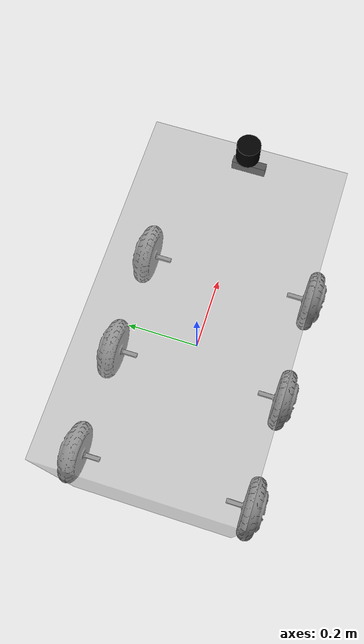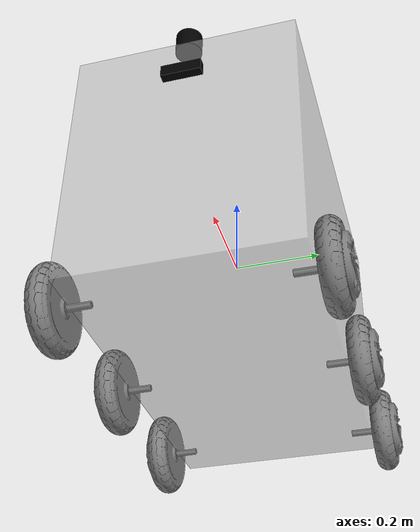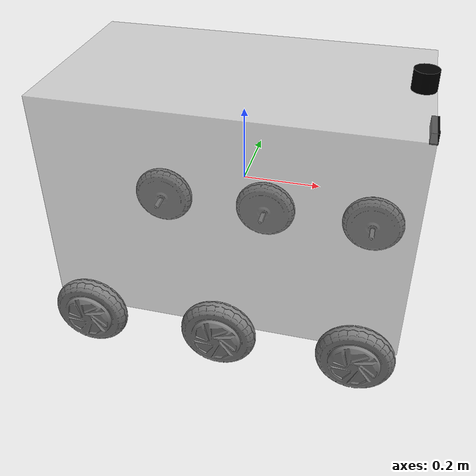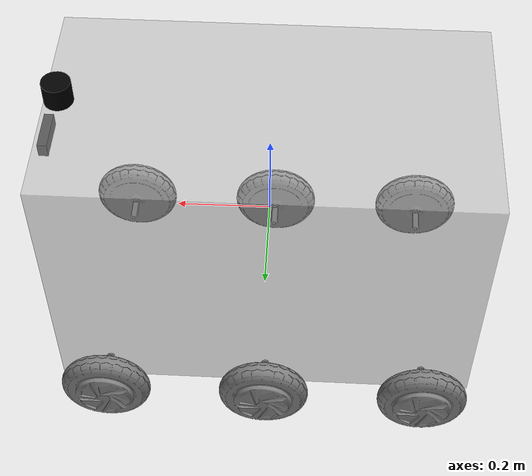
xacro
<?xml version="1.0"?>
<robot name="delivery_robot" xmlns:xacro="http://ros.org/wiki/xacro">

  <!-- Właściwości -->
  <xacro:property name="body_length" value="0.9"/>
  <xacro:property name="body_width" value="0.5"/>
  <xacro:property name="body_height" value="0.6"/>
  <xacro:property name="wheel_radius" value="0.1016"/>
  <xacro:property name="wheel_width" value="0.05"/>
  <xacro:property name="wheel_gap" value="0.35"/>
  <xacro:property name="wheel_y_offset" value="${0.5 * body_width + 0.009}"/>
  <xacro:property name="wheel_mass" value="3.0"/>
  <xacro:property name="pkg_path" value="$(find boxygo)"/>

  <!-- Materiały -->
  <material name="black"><color rgba="0 0 0 1"/></material>
  <material name="white"><color rgba="0.7 0.7 0.7 0.5"/></material>
  <material name="grey"><color rgba="0.5 0.5 0.5 1"/></material>

  <!-- Korpus -->
  <link name="base_link">
    <visual>
      <geometry>
        <box size="${body_length} ${body_width} ${body_height}"/>
      </geometry>
      <material name="white"/>
    </visual>
    <collision>
      <geometry>
        <box size="${body_length} ${body_width} ${body_height}"/>
      </geometry>
    </collision>
    <inertial>
      <mass value="20"/>
      <inertia ixx="1" ixy="0" ixz="0" iyy="1" iyz="0" izz="1"/>
    </inertial>
  </link>

    <!-- Kamera -->
  <link name="depth_camera_link">
    <visual>
      <geometry>
        <box size="0.02 0.09 0.03"/>
      </geometry>
      <material name="black"/>
    </visual>
    <collision>
      <geometry>
        <box size="0.02 0.09 0.03"/>
      </geometry>
    </collision>
    <inertial>
      <mass value="0.1"/>
      <inertia ixx="0.0001" ixy="0.0" ixz="0.0" iyy="0.0001" iyz="0.0" izz="0.0001"/>
    </inertial>
  </link>

  <joint name="depth_camera_joint" type="fixed">
    <parent link="base_link"/>
    <child link="depth_camera_link"/>
    <origin xyz="${body_length/2 + 0.01} 0 ${body_height/2 - 0.1}" rpy="0 0 0"/>
  </joint>

  <joint name="depth_camera_optical_joint" type="fixed">
    <parent link="depth_camera_link"/>
    <child link="depth_camera_link_optical"/>
    <origin xyz="0 0 0" rpy="-1.5708 0 -1.5708"/> <!-- -pi/2 in radians -->
  </joint>

  <link name="depth_camera_link_optical"/>

  <gazebo reference="depth_camera_link">
    <sensor name="depth_camera" type="depth">
      <pose>0 0 0 0 0 0</pose>
      <visualize>true</visualize>
      <update_rate>30.0</update_rate>
      <camera>
        <horizontal_fov>1.39626</horizontal_fov>
        <image>
          <width>640</width>
          <height>480</height>
          <format>B8G8R8</format>
        </image>
        <clip>
          <near>0.1</near>
          <far>10.0</far>
        </clip>
      </camera>
      <plugin name="depth_camera_controller" filename="libgazebo_ros_camera.so">
        <camera_name>depth_camera</camera_name>
        <frame_name>depth_camera_link_optical</frame_name>
        <min_depth>0.1</min_depth>
        <max_depth>100.0</max_depth>
      </plugin>
    </sensor>
  </gazebo>

    <!-- Lidar 2D -->
  <link name="lidar_link">
    <visual>
      <geometry>
        <cylinder length="0.05" radius="0.03"/>
      </geometry>
      <material name="black"/>
    </visual>
    <collision>
      <geometry>
        <cylinder length="0.05" radius="0.03"/>
      </geometry>
    </collision>
    <inertial>
      <mass value="0.2"/>
      <inertia ixx="0.0001" ixy="0" ixz="0" iyy="0.0001" iyz="0" izz="0.0001"/>
    </inertial>
  </link>

  <joint name="lidar_joint" type="fixed">
    <parent link="base_link"/>
    <child link="lidar_link"/>
    <origin xyz="${body_length/2 - 0.03} 0 ${body_height/2 + 0.025}" rpy="0 0 0"/>
  </joint>

  <gazebo reference="lidar_link">
    <sensor name="lidar_sensor" type="ray">
      <always_on>true</always_on>
      <update_rate>20.0</update_rate>
      <visualize>true</visualize>
      <ray>
        <scan>
          <horizontal>
            <samples>720</samples>
            <resolution>1</resolution>
            <min_angle>-1.5708</min_angle>
            <max_angle>1.5708</max_angle>
          </horizontal>
        </scan>
        <range>
          <min>0.1</min>
          <max>12.0</max>
          <resolution>0.01</resolution>
        </range>
        <noise>
          <type>gaussian</type>
          <mean>0.0</mean>
          <stddev>0.01</stddev>
        </noise>
      </ray>
      <plugin name="gazebo_ros_laser" filename="libgazebo_ros_ray_sensor.so">
        <topicName>scan</topicName>
        <frameName>lidar_link</frameName>
      </plugin>
    </sensor>
  </gazebo>

  <!-- Makro koła -->
  <xacro:macro name="wheel" params="side wheel_side_sign joint_sign index x_offset">
    <xacro:property name="ixx" value="${(1.0/12.0) * wheel_mass * (3 * wheel_radius**2 + wheel_width**2)}"/>
    <xacro:property name="izz" value="${0.5 * wheel_mass * wheel_radius**2}"/>
    <link name="${side}_wheel_${index}">
      <inertial>
        <mass value="${wheel_mass}"/>
        <inertia ixx="${ixx}" iyy="${ixx}" izz="${izz}" ixy="0.0" ixz="0.0" iyz="0.0"/>
      </inertial>
      <visual>
        <geometry>
          <mesh filename="${pkg_path}/meshes/hoverboard_wheel_v2.stl" scale="0.001 0.001 0.001"/>
        </geometry>
        <origin xyz="0 0 0" rpy="0 0 ${wheel_side_sign * 3.141592}"/>
        <material name="grey"/>
      </visual>
      <collision>
        <geometry>
          <mesh filename="${pkg_path}/meshes/hoverboard_wheel_v2.stl" scale="0.001 0.001 0.001"/>
        </geometry>
        <origin xyz="0 0 0" rpy="0 0 ${wheel_side_sign * 3.141592}"/>
      </collision>
    </link>
    <gazebo reference="${side}_wheel_${index}">
      <mu1>1.0</mu1>
      <mu2>1.0</mu2>
      <kp>100000.0</kp>
      <kd>10.0</kd>
      <minDepth>0.001</minDepth>
      <maxVel>0.01</maxVel>
    </gazebo>
    <joint name="${side}_wheel_${index}_joint" type="continuous">
      <parent link="base_link"/>
      <child link="${side}_wheel_${index}"/>
      <origin xyz="${x_offset} ${joint_sign * wheel_y_offset} ${-0.5 * body_height}" rpy="0 0 0"/>
      <axis xyz="0 1 0"/>
      <limit effort="10.0" velocity="10.0"/>
      <dynamics damping="0.1" friction="0.1"/>
    </joint>
    <transmission name="${side}_wheel_${index}_trans">
    <type>transmission_interface/SimpleTransmission</type>
    <joint name="${side}_wheel_${index}_joint">
      <hardwareInterface>hardware_interface/VelocityJointInterface</hardwareInterface>
    </joint>
    <actuator name="${side}_wheel_${index}_motor">
      <hardwareInterface>hardware_interface/VelocityJointInterface</hardwareInterface>
      <mechanicalReduction>1</mechanicalReduction>
    </actuator>
  </transmission>
  </xacro:macro>

  <!-- Koła lewe -->
  <xacro:wheel side="left" wheel_side_sign="1" joint_sign="1" index="1" x_offset="${-wheel_gap}"/>
  <xacro:wheel side="left" wheel_side_sign="1" joint_sign="1" index="2" x_offset="0"/>
  <xacro:wheel side="left" wheel_side_sign="1" joint_sign="1" index="3" x_offset="${wheel_gap}"/>
  <!-- Koła prawe -->
  <xacro:wheel side="right" wheel_side_sign="0" joint_sign="-1" index="1" x_offset="${-wheel_gap}"/>
  <xacro:wheel side="right" wheel_side_sign="0" joint_sign="-1" index="2" x_offset="0"/>
  <xacro:wheel side="right" wheel_side_sign="0" joint_sign="-1" index="3" x_offset="${wheel_gap}"/>

  <!-- Gazebo - kolor -->
  <gazebo reference="base_link">
    <material>Gazebo/White</material>
  </gazebo>
  <gazebo reference="left_wheel_1">
    <material>Gazebo/Grey</material>
  </gazebo>
  <gazebo reference="left_wheel_2">
    <material>Gazebo/Grey</material>
  </gazebo>
  <gazebo reference="left_wheel_3">
    <material>Gazebo/Grey</material>
  </gazebo>
  <gazebo reference="right_wheel_1">
    <material>Gazebo/Grey</material>
  </gazebo>
  <gazebo reference="right_wheel_2">
    <material>Gazebo/Grey</material>
  </gazebo>
  <gazebo reference="right_wheel_3">
    <material>Gazebo/Grey</material>
  </gazebo>
  <gazebo reference="lidar_link">
    <material>Gazebo/Black</material>
  </gazebo>
  <gazebo reference="depth_camera_link">
    <material>Gazebo/Black</material>
  </gazebo>

  <!-- Plugin ros2_control -->
  <gazebo>
    <plugin name="gazebo_ros2_control" filename="libgazebo_ros2_control.so">
      <update_rate>30</update_rate>
      <parameters>${pkg_path}/config/diff_drive_controller_v1.yaml</parameters>
    </plugin>
  </gazebo>

  <!-- ros2_control hardware -->
  <ros2_control name="BoxyGoSystem" type="system">
    <hardware>
      <plugin>gazebo_ros2_control/GazeboSystem</plugin>
    </hardware>
    <joint name="left_wheel_1_joint">
      <command_interface name="velocity"/>
      <state_interface name="position"/>
      <state_interface name="velocity"/>
    </joint>
    <joint name="left_wheel_2_joint">
      <command_interface name="velocity"/>
      <state_interface name="position"/>
      <state_interface name="velocity"/>
    </joint>
    <joint name="left_wheel_3_joint">
      <command_interface name="velocity"/>
      <state_interface name="position"/>
      <state_interface name="velocity"/>
    </joint>
    <joint name="right_wheel_1_joint">
      <command_interface name="velocity"/>
      <state_interface name="position"/>
      <state_interface name="velocity"/>
    </joint>
    <joint name="right_wheel_2_joint">
      <command_interface name="velocity"/>
      <state_interface name="position"/>
      <state_interface name="velocity"/>
    </joint>
    <joint name="right_wheel_3_joint">
      <command_interface name="velocity"/>
      <state_interface name="position"/>
      <state_interface name="velocity"/>
    </joint>
  </ros2_control>

</robot>
